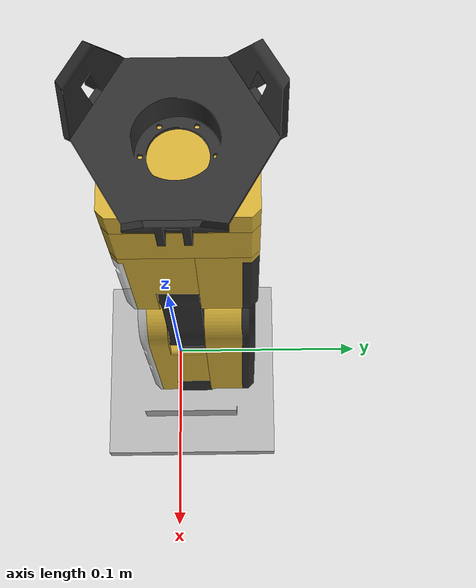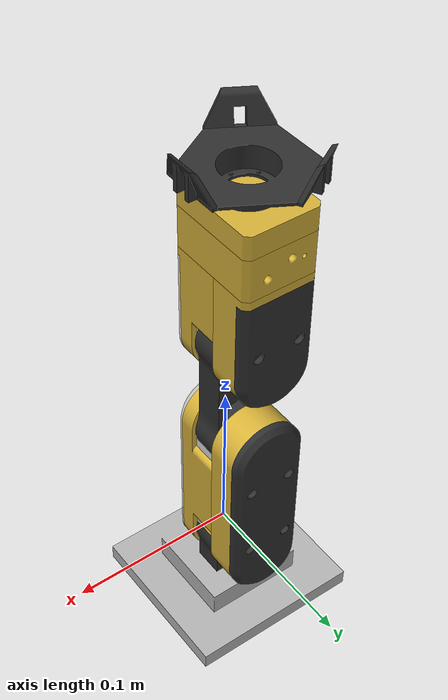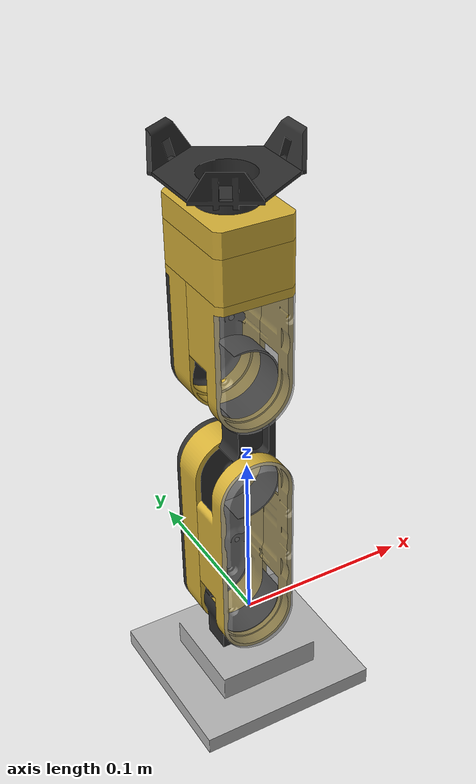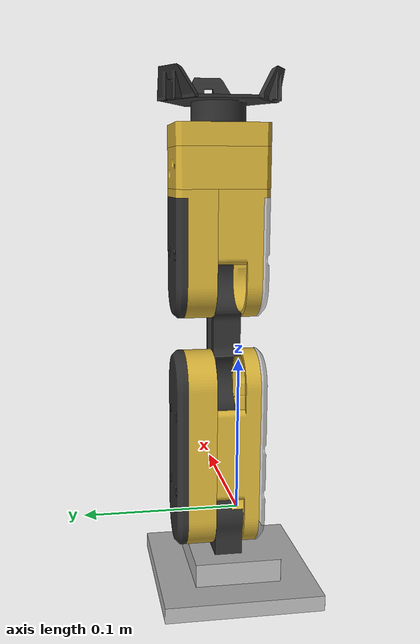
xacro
<?xml version="1.0" ?>
<robot name="Arm1" xmlns:xacro="http://www.ros.org/wiki/xacro">

<xacro:include filename="$(find arm_description)/urdf/materials.xacro" />
<xacro:include filename="$(find arm_description)/urdf/Arm1.trans" />
<xacro:include filename="$(find arm_description)/urdf/Arm1.gazebo" />
<link name="base_link">
  <inertial>
    <origin xyz="1.280959176633898e-06 0.00443398426662265 -0.04099319631573078" rpy="0 0 0"/>
    <mass value="1.1942675675441157"/>
    <inertia ixx="0.000838" iyy="0.000924" izz="0.001654" ixy="-0.0" iyz="-0.0" ixz="-0.0"/>
  </inertial>
  <visual>
    <origin xyz="0 0 0" rpy="0 0 0"/>
    <geometry>
      <mesh filename="package://arm_description/meshes/base_link.stl" scale="0.001 0.001 0.001"/>
    </geometry>
    <material name="silver"/>
  </visual>
  <collision>
    <origin xyz="0 0 0" rpy="0 0 0"/>
    <geometry>
      <mesh filename="package://arm_description/meshes/base_link.stl" scale="0.001 0.001 0.001"/>
    </geometry>
  </collision>
</link>

<link name="Arm1_de-featured_base_v1_1">
  <inertial>
    <origin xyz="0.011962350835025275 -2.911559882079473e-14 0.006684066539745213" rpy="0 0 0"/>
    <mass value="0.015490383396516524"/>
    <inertia ixx="1e-06" iyy="3e-06" izz="3e-06" ixy="-0.0" iyz="-0.0" ixz="-0.0"/>
  </inertial>
  <visual>
    <origin xyz="0.012 -0.00875 0.025" rpy="0 0 0"/>
    <geometry>
      <mesh filename="package://arm_description/meshes/Arm1_de-featured_base_v1_1.stl" scale="0.001 0.001 0.001"/>
    </geometry>
    <material name="black"/>
  </visual>
  <collision>
    <origin xyz="0.012 -0.00875 0.025" rpy="0 0 0"/>
    <geometry>
      <mesh filename="package://arm_description/meshes/Arm1_de-featured_base_v1_1.stl" scale="0.001 0.001 0.001"/>
    </geometry>
  </collision>
</link>

<link name="Arm1_Fusion2URDF_Arm1_de-featured_doubleJoint_electronicsCover_v1_v1_1">
  <inertial>
    <origin xyz="-2.3661406979947752e-15 0.004302521067873384 0.0424999999999864" rpy="0 0 0"/>
    <mass value="0.038546383418622536"/>
    <inertia ixx="4.9e-05" iyy="5.6e-05" izz="7e-06" ixy="0.0" iyz="0.0" ixz="0.0"/>
  </inertial>
  <visual>
    <origin xyz="-0.0 -0.0355 0.0" rpy="0 0 0"/>
    <geometry>
      <mesh filename="package://arm_description/meshes/Arm1_Fusion2URDF_Arm1_de-featured_doubleJoint_electronicsCover_v1_v1_1.stl" scale="0.001 0.001 0.001"/>
    </geometry>
    <material name="black"/>
  </visual>
  <collision>
    <origin xyz="-0.0 -0.0355 0.0" rpy="0 0 0"/>
    <geometry>
      <mesh filename="package://arm_description/meshes/Arm1_Fusion2URDF_Arm1_de-featured_doubleJoint_electronicsCover_v1_v1_1.stl" scale="0.001 0.001 0.001"/>
    </geometry>
  </collision>
</link>

<link name="Arm1_Fusion2URDF_Arm1_de-featured_armHousing_v1_v1_1">
  <inertial>
    <origin xyz="4.385771140597992e-15 -0.03474077761053653 1.472433286409114e-14" rpy="0 0 0"/>
    <mass value="0.03324824384679508"/>
    <inertia ixx="3.8e-05" iyy="4.8e-05" izz="1.5e-05" ixy="0.0" iyz="0.0" ixz="-0.0"/>
  </inertial>
  <visual>
    <origin xyz="-0.0 -0.035 -0.0425" rpy="0 0 0"/>
    <geometry>
      <mesh filename="package://arm_description/meshes/Arm1_Fusion2URDF_Arm1_de-featured_armHousing_v1_v1_1.stl" scale="0.001 0.001 0.001"/>
    </geometry>
    <material name="gold"/>
  </visual>
  <collision>
    <origin xyz="-0.0 -0.035 -0.0425" rpy="0 0 0"/>
    <geometry>
      <mesh filename="package://arm_description/meshes/Arm1_Fusion2URDF_Arm1_de-featured_armHousing_v1_v1_1.stl" scale="0.001 0.001 0.001"/>
    </geometry>
  </collision>
</link>

<link name="Arm1_Fusion2URDF_Arm1_de-featured_doubleJoint_gearCover_v1_v1_1">
  <inertial>
    <origin xyz="-3.387755705511744e-14 -0.0025800471702999896 -0.04249999999999356" rpy="0 0 0"/>
    <mass value="0.04082339590091089"/>
    <inertia ixx="3.8e-05" iyy="4.5e-05" izz="6e-06" ixy="0.0" iyz="0.0" ixz="0.0"/>
  </inertial>
  <visual>
    <origin xyz="-0.0 0.01 -0.085" rpy="0 0 0"/>
    <geometry>
      <mesh filename="package://arm_description/meshes/Arm1_Fusion2URDF_Arm1_de-featured_doubleJoint_gearCover_v1_v1_1.stl" scale="0.001 0.001 0.001"/>
    </geometry>
    <material name="clear"/>
  </visual>
  <collision>
    <origin xyz="-0.0 0.01 -0.085" rpy="0 0 0"/>
    <geometry>
      <mesh filename="package://arm_description/meshes/Arm1_Fusion2URDF_Arm1_de-featured_doubleJoint_gearCover_v1_v1_1.stl" scale="0.001 0.001 0.001"/>
    </geometry>
  </collision>
</link>

<link name="Arm1_Fusion2URDF_Arm1_de-featured_bearingSupport_v1_v1_1">
  <inertial>
    <origin xyz="-0.020999787123567593 0.011936593580704046 -0.03507452173313677" rpy="0 0 0"/>
    <mass value="0.025170746465891514"/>
    <inertia ixx="2e-05" iyy="2.7e-05" izz="9e-06" ixy="0.0" iyz="-2e-06" ixz="-0.0"/>
  </inertial>
  <visual>
    <origin xyz="-0.021 -0.018 -0.207" rpy="0 0 0"/>
    <geometry>
      <mesh filename="package://arm_description/meshes/Arm1_Fusion2URDF_Arm1_de-featured_bearingSupport_v1_v1_1.stl" scale="0.001 0.001 0.001"/>
    </geometry>
    <material name="gold"/>
  </visual>
  <collision>
    <origin xyz="-0.021 -0.018 -0.207" rpy="0 0 0"/>
    <geometry>
      <mesh filename="package://arm_description/meshes/Arm1_Fusion2URDF_Arm1_de-featured_bearingSupport_v1_v1_1.stl" scale="0.001 0.001 0.001"/>
    </geometry>
  </collision>
</link>

<link name="Arm1_Fusion2URDF_Arm1_de-featured_gearCover_v1_v1_1">
  <inertial>
    <origin xyz="-0.0001264298888167157 -0.0025052801286150703 0.023017088747785658" rpy="0 0 0"/>
    <mass value="0.025259547950496876"/>
    <inertia ixx="1e-05" iyy="1.4e-05" izz="4e-06" ixy="0.0" iyz="-0.0" ixz="0.0"/>
  </inertial>
  <visual>
    <origin xyz="0.0 0.0095 -0.15" rpy="0 0 0"/>
    <geometry>
      <mesh filename="package://arm_description/meshes/Arm1_Fusion2URDF_Arm1_de-featured_gearCover_v1_v1_1.stl" scale="0.001 0.001 0.001"/>
    </geometry>
    <material name="clear"/>
  </visual>
  <collision>
    <origin xyz="0.0 0.0095 -0.15" rpy="0 0 0"/>
    <geometry>
      <mesh filename="package://arm_description/meshes/Arm1_Fusion2URDF_Arm1_de-featured_gearCover_v1_v1_1.stl" scale="0.001 0.001 0.001"/>
    </geometry>
  </collision>
</link>

<link name="Arm1_Fusion2URDF_Arm1_de-featured_electronicsCover_v1_v1_v1_1">
  <inertial>
    <origin xyz="-6.349021698318172e-14 0.004347631607048839 0.016045953544834762" rpy="0 0 0"/>
    <mass value="0.02203612800618232"/>
    <inertia ixx="9e-06" iyy="1.3e-05" izz="4e-06" ixy="0.0" iyz="-0.0" ixz="0.0"/>
  </inertial>
  <visual>
    <origin xyz="0.0 -0.036 -0.15" rpy="0 0 0"/>
    <geometry>
      <mesh filename="package://arm_description/meshes/Arm1_Fusion2URDF_Arm1_de-featured_electronicsCover_v1_v1_v1_1.stl" scale="0.001 0.001 0.001"/>
    </geometry>
    <material name="black"/>
  </visual>
  <collision>
    <origin xyz="0.0 -0.036 -0.15" rpy="0 0 0"/>
    <geometry>
      <mesh filename="package://arm_description/meshes/Arm1_Fusion2URDF_Arm1_de-featured_electronicsCover_v1_v1_v1_1.stl" scale="0.001 0.001 0.001"/>
    </geometry>
  </collision>
</link>

<link name="Arm1_Fusion2URDF_EF_grip_v1_v1__1__1">
  <inertial>
    <origin xyz="-0.001850083275097971 -0.003204213495749954 0.006397387641960739" rpy="0 0 0"/>
    <mass value="0.009673831386691303"/>
    <inertia ixx="0.0" iyy="1e-06" izz="1e-06" ixy="0.0" iyz="0.0" ixz="0.0"/>
  </inertial>
  <visual>
    <origin xyz="0.015 0.011731 -0.2584" rpy="0 0 0"/>
    <geometry>
      <mesh filename="package://arm_description/meshes/Arm1_Fusion2URDF_EF_grip_v1_v1__1__1.stl" scale="0.001 0.001 0.001"/>
    </geometry>
    <material name="black"/>
  </visual>
  <collision>
    <origin xyz="0.015 0.011731 -0.2584" rpy="0 0 0"/>
    <geometry>
      <mesh filename="package://arm_description/meshes/Arm1_Fusion2URDF_EF_grip_v1_v1__1__1.stl" scale="0.001 0.001 0.001"/>
    </geometry>
  </collision>
</link>

<link name="Arm1_Fusion2URDF_EF_grip_v1_v1__2__1">
  <inertial>
    <origin xyz="0.003700177939647664 6.5758094282275525e-09 0.0063973876419607945" rpy="0 0 0"/>
    <mass value="0.009673831386691303"/>
    <inertia ixx="1e-06" iyy="0.0" izz="1e-06" ixy="0.0" iyz="0.0" ixz="-0.0"/>
  </inertial>
  <visual>
    <origin xyz="-0.03 -0.01425 -0.2584" rpy="0 0 0"/>
    <geometry>
      <mesh filename="package://arm_description/meshes/Arm1_Fusion2URDF_EF_grip_v1_v1__2__1.stl" scale="0.001 0.001 0.001"/>
    </geometry>
    <material name="black"/>
  </visual>
  <collision>
    <origin xyz="-0.03 -0.01425 -0.2584" rpy="0 0 0"/>
    <geometry>
      <mesh filename="package://arm_description/meshes/Arm1_Fusion2URDF_EF_grip_v1_v1__2__1.stl" scale="0.001 0.001 0.001"/>
    </geometry>
  </collision>
</link>

<link name="Arm1_Fusion2URDF_EF_grip_v1_v1_1">
  <inertial>
    <origin xyz="-0.0018500946647350483 0.003204206919938682 0.006397387641961405" rpy="0 0 0"/>
    <mass value="0.009673831386691303"/>
    <inertia ixx="0.0" iyy="1e-06" izz="1e-06" ixy="-0.0" iyz="-0.0" ixz="0.0"/>
  </inertial>
  <visual>
    <origin xyz="0.015 -0.040231 -0.2584" rpy="0 0 0"/>
    <geometry>
      <mesh filename="package://arm_description/meshes/Arm1_Fusion2URDF_EF_grip_v1_v1_1.stl" scale="0.001 0.001 0.001"/>
    </geometry>
    <material name="black"/>
  </visual>
  <collision>
    <origin xyz="0.015 -0.040231 -0.2584" rpy="0 0 0"/>
    <geometry>
      <mesh filename="package://arm_description/meshes/Arm1_Fusion2URDF_EF_grip_v1_v1_1.stl" scale="0.001 0.001 0.001"/>
    </geometry>
  </collision>
</link>

<link name="Arm1_Fusion2URDF_Arm1_de-featured_wristHousing_v1_v1_1">
  <inertial>
    <origin xyz="0.02037011900079004 -0.025411886196642863 0.013328921156734314" rpy="0 0 0"/>
    <mass value="0.038841206654025386"/>
    <inertia ixx="2e-05" iyy="1.3e-05" izz="2.8e-05" ixy="0.0" iyz="-0.0" ixz="0.0"/>
  </inertial>
  <visual>
    <origin xyz="0.0205 -0.041 -0.207" rpy="0 0 0"/>
    <geometry>
      <mesh filename="package://arm_description/meshes/Arm1_Fusion2URDF_Arm1_de-featured_wristHousing_v1_v1_1.stl" scale="0.001 0.001 0.001"/>
    </geometry>
    <material name="gold"/>
  </visual>
  <collision>
    <origin xyz="0.0205 -0.041 -0.207" rpy="0 0 0"/>
    <geometry>
      <mesh filename="package://arm_description/meshes/Arm1_Fusion2URDF_Arm1_de-featured_wristHousing_v1_v1_1.stl" scale="0.001 0.001 0.001"/>
    </geometry>
  </collision>
</link>

<link name="Arm1_Fusion2URDF_Arm1_de-featured_wristCover_v1_v1_1">
  <inertial>
    <origin xyz="0.02049999999993821 -0.025323377914748035 0.008807906838274399" rpy="0 0 0"/>
    <mass value="0.03818700044315975"/>
    <inertia ixx="1.5e-05" iyy="8e-06" izz="2.2e-05" ixy="0.0" iyz="0.0" ixz="-0.0"/>
  </inertial>
  <visual>
    <origin xyz="0.0205 -0.041 -0.2315" rpy="0 0 0"/>
    <geometry>
      <mesh filename="package://arm_description/meshes/Arm1_Fusion2URDF_Arm1_de-featured_wristCover_v1_v1_1.stl" scale="0.001 0.001 0.001"/>
    </geometry>
    <material name="gold"/>
  </visual>
  <collision>
    <origin xyz="0.0205 -0.041 -0.2315" rpy="0 0 0"/>
    <geometry>
      <mesh filename="package://arm_description/meshes/Arm1_Fusion2URDF_Arm1_de-featured_wristCover_v1_v1_1.stl" scale="0.001 0.001 0.001"/>
    </geometry>
  </collision>
</link>

<link name="Arm1_de-featured_doubleJoint_bearingSupport_v1_1">
  <inertial>
    <origin xyz="-3.3444607263137293e-15 0.00840699644505781 0.042499999999982316" rpy="0 0 0"/>
    <mass value="0.03393341225951787"/>
    <inertia ixx="5.8e-05" iyy="6.8e-05" izz="1.3e-05" ixy="-0.0" iyz="-0.0" ixz="-0.0"/>
  </inertial>
  <visual>
    <origin xyz="-0.0 -0.0175 0.0" rpy="0 0 0"/>
    <geometry>
      <mesh filename="package://arm_description/meshes/Arm1_de-featured_doubleJoint_bearingSupport_v1_1.stl" scale="0.001 0.001 0.001"/>
    </geometry>
    <material name="gold"/>
  </visual>
  <collision>
    <origin xyz="-0.0 -0.0175 0.0" rpy="0 0 0"/>
    <geometry>
      <mesh filename="package://arm_description/meshes/Arm1_de-featured_doubleJoint_bearingSupport_v1_1.stl" scale="0.001 0.001 0.001"/>
    </geometry>
  </collision>
</link>

<link name="Arm1_Fusion2URDF_Arm1_de-featured_elbow_v1_v1_1">
  <inertial>
    <origin xyz="0.008561725794446499 -0.008750000000000011 0.03250000000004309" rpy="0 0 0"/>
    <mass value="0.023977309097512407"/>
    <inertia ixx="1.1e-05" iyy="1.2e-05" izz="2e-06" ixy="0.0" iyz="-0.0" ixz="-0.0"/>
  </inertial>
  <visual>
    <origin xyz="-0.0 -0.0175 -0.085" rpy="0 0 0"/>
    <geometry>
      <mesh filename="package://arm_description/meshes/Arm1_Fusion2URDF_Arm1_de-featured_elbow_v1_v1_1.stl" scale="0.001 0.001 0.001"/>
    </geometry>
    <material name="black"/>
  </visual>
  <collision>
    <origin xyz="-0.0 -0.0175 -0.085" rpy="0 0 0"/>
    <geometry>
      <mesh filename="package://arm_description/meshes/Arm1_Fusion2URDF_Arm1_de-featured_elbow_v1_v1_1.stl" scale="0.001 0.001 0.001"/>
    </geometry>
  </collision>
</link>

<link name="Arm1_Fusion2URDF_Arm1_de-featured_armHousing_v1__1__v1_1">
  <inertial>
    <origin xyz="-2.991185227266448e-05 -0.00030814304486015854 0.027559175237004824" rpy="0 0 0"/>
    <mass value="0.024910283038556406"/>
    <inertia ixx="1.5e-05" iyy="2.2e-05" izz="1.1e-05" ixy="-0.0" iyz="-0.0" ixz="-0.0"/>
  </inertial>
  <visual>
    <origin xyz="0.0 0.0 -0.15" rpy="0 0 0"/>
    <geometry>
      <mesh filename="package://arm_description/meshes/Arm1_Fusion2URDF_Arm1_de-featured_armHousing_v1__1__v1_1.stl" scale="0.001 0.001 0.001"/>
    </geometry>
    <material name="gold"/>
  </visual>
  <collision>
    <origin xyz="0.0 0.0 -0.15" rpy="0 0 0"/>
    <geometry>
      <mesh filename="package://arm_description/meshes/Arm1_Fusion2URDF_Arm1_de-featured_armHousing_v1__1__v1_1.stl" scale="0.001 0.001 0.001"/>
    </geometry>
  </collision>
</link>

<link name="Arm1_Fusion2URDF_EF_base_v1_v1_1">
  <inertial>
    <origin xyz="-6.13536998983477e-14 -5.533767888366015e-16 0.01056352610936051" rpy="0 0 0"/>
    <mass value="0.052083727437172454"/>
    <inertia ixx="1.4e-05" iyy="1.4e-05" izz="2.5e-05" ixy="0.0" iyz="-0.0" ixz="0.0"/>
  </inertial>
  <visual>
    <origin xyz="0.0 -0.01425 -0.245" rpy="0 0 0"/>
    <geometry>
      <mesh filename="package://arm_description/meshes/Arm1_Fusion2URDF_EF_base_v1_v1_1.stl" scale="0.001 0.001 0.001"/>
    </geometry>
    <material name="black"/>
  </visual>
  <collision>
    <origin xyz="0.0 -0.01425 -0.245" rpy="0 0 0"/>
    <geometry>
      <mesh filename="package://arm_description/meshes/Arm1_Fusion2URDF_EF_base_v1_v1_1.stl" scale="0.001 0.001 0.001"/>
    </geometry>
  </collision>
</link>

<joint name="Rigid1" type="fixed">
  <origin xyz="-0.012 0.00875 -0.025" rpy="0 0 0"/>
  <parent link="base_link"/>
  <child link="Arm1_de-featured_base_v1_1"/>
</joint>

<joint name="Rigid2" type="fixed">
  <origin xyz="0.0 0.018 0.0" rpy="0 0 0"/>
  <parent link="Arm1_de-featured_doubleJoint_bearingSupport_v1_1"/>
  <child link="Arm1_Fusion2URDF_Arm1_de-featured_doubleJoint_electronicsCover_v1_v1_1"/>
</joint>

<joint name="Rigid3" type="fixed">
  <origin xyz="0.0 0.0175 0.0425" rpy="0 0 0"/>
  <parent link="Arm1_de-featured_doubleJoint_bearingSupport_v1_1"/>
  <child link="Arm1_Fusion2URDF_Arm1_de-featured_armHousing_v1_v1_1"/>
</joint>

<joint name="Rigid4" type="fixed">
  <origin xyz="0.0 -0.045 0.0425" rpy="0 0 0"/>
  <parent link="Arm1_Fusion2URDF_Arm1_de-featured_armHousing_v1_v1_1"/>
  <child link="Arm1_Fusion2URDF_Arm1_de-featured_doubleJoint_gearCover_v1_v1_1"/>
</joint>

<joint name="Rigid5" type="fixed">
  <origin xyz="0.021 0.018 0.057" rpy="0 0 0"/>
  <parent link="Arm1_Fusion2URDF_Arm1_de-featured_armHousing_v1__1__v1_1"/>
  <child link="Arm1_Fusion2URDF_Arm1_de-featured_bearingSupport_v1_v1_1"/>
</joint>

<joint name="Rigid6" type="fixed">
  <origin xyz="0.0 -0.0095 0.0" rpy="0 0 0"/>
  <parent link="Arm1_Fusion2URDF_Arm1_de-featured_armHousing_v1__1__v1_1"/>
  <child link="Arm1_Fusion2URDF_Arm1_de-featured_gearCover_v1_v1_1"/>
</joint>

<joint name="Rigid7" type="fixed">
  <origin xyz="-0.021 0.018 -0.057" rpy="0 0 0"/>
  <parent link="Arm1_Fusion2URDF_Arm1_de-featured_bearingSupport_v1_v1_1"/>
  <child link="Arm1_Fusion2URDF_Arm1_de-featured_electronicsCover_v1_v1_v1_1"/>
</joint>

<joint name="Rigid8" type="fixed">
  <origin xyz="-0.015 -0.025981 0.0134" rpy="0 0 0"/>
  <parent link="Arm1_Fusion2URDF_EF_base_v1_v1_1"/>
  <child link="Arm1_Fusion2URDF_EF_grip_v1_v1__1__1"/>
</joint>

<joint name="Rigid9" type="fixed">
  <origin xyz="0.03 0.0 0.0134" rpy="0 0 0"/>
  <parent link="Arm1_Fusion2URDF_EF_base_v1_v1_1"/>
  <child link="Arm1_Fusion2URDF_EF_grip_v1_v1__2__1"/>
</joint>

<joint name="Rigid10" type="fixed">
  <origin xyz="-0.015 0.025981 0.0134" rpy="0 0 0"/>
  <parent link="Arm1_Fusion2URDF_EF_base_v1_v1_1"/>
  <child link="Arm1_Fusion2URDF_EF_grip_v1_v1_1"/>
</joint>

<joint name="Rigid11" type="fixed">
  <origin xyz="-0.0415 0.023 0.0" rpy="0 0 0"/>
  <parent link="Arm1_Fusion2URDF_Arm1_de-featured_bearingSupport_v1_v1_1"/>
  <child link="Arm1_Fusion2URDF_Arm1_de-featured_wristHousing_v1_v1_1"/>
</joint>

<joint name="Rigid12" type="fixed">
  <origin xyz="0.0 0.0 0.0245" rpy="0 0 0"/>
  <parent link="Arm1_Fusion2URDF_Arm1_de-featured_wristHousing_v1_v1_1"/>
  <child link="Arm1_Fusion2URDF_Arm1_de-featured_wristCover_v1_v1_1"/>
</joint>

<joint name="shoulder" type="revolute">
  <origin xyz="0.012 0.00875 0.025" rpy="0 0 0"/>
  <parent link="Arm1_de-featured_base_v1_1"/>
  <child link="Arm1_de-featured_doubleJoint_bearingSupport_v1_1"/>
  <axis xyz="-0.0 1.0 -0.0"/>
  <limit upper="1.22173" lower="-1.22173" effort="100" velocity="100"/>
</joint>

<joint name="elbow_1" type="revolute">
  <origin xyz="0.0 0.0 0.085" rpy="0 0 0"/>
  <parent link="Arm1_de-featured_doubleJoint_bearingSupport_v1_1"/>
  <child link="Arm1_Fusion2URDF_Arm1_de-featured_elbow_v1_v1_1"/>
  <axis xyz="-0.0 1.0 0.0"/>
  <limit upper="1.291544" lower="-1.884956" effort="100" velocity="100"/>
</joint>

<joint name="elbow_2" type="revolute">
  <origin xyz="-0.0 -0.0175 0.065" rpy="0 0 0"/>
  <parent link="Arm1_Fusion2URDF_Arm1_de-featured_elbow_v1_v1_1"/>
  <child link="Arm1_Fusion2URDF_Arm1_de-featured_armHousing_v1__1__v1_1"/>
  <axis xyz="-0.0 1.0 0.0"/>
  <limit upper="1.134464" lower="-1.884956" effort="100" velocity="100"/>
</joint>

<joint name="wrist" type="continuous">
  <origin xyz="0.0205 -0.02675 0.0135" rpy="0 0 0"/>
  <parent link="Arm1_Fusion2URDF_Arm1_de-featured_wristCover_v1_v1_1"/>
  <child link="Arm1_Fusion2URDF_EF_base_v1_v1_1"/>
  <axis xyz="-0.0 -0.0 1.0"/>
</joint>

</robot>

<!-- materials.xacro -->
<robot name="Arm1" xmlns:xacro="http://www.ros.org/wiki/xacro" >

<material name="silver">
  <color rgba="0.700 0.700 0.700 1.000"/>
</material>

<material name="gold">
  <color rgba="0.831 0.686 0.216 1.000"/>
</material>

<material name="black">
  <color rgba="0.18 0.18 0.18 1.000"/>
</material>

<material name="clear">
  <color rgba="0.7 0.7 0.7 0.6000"/>
</material>

</robot>
